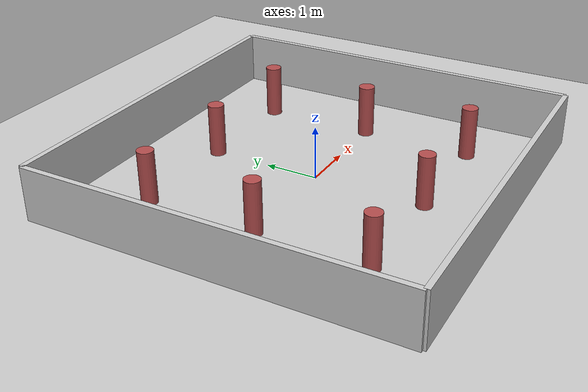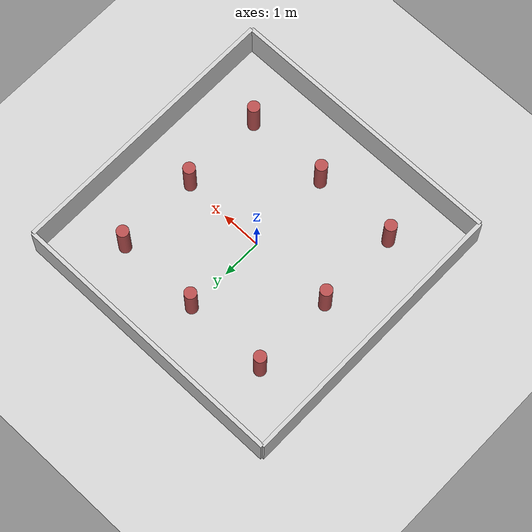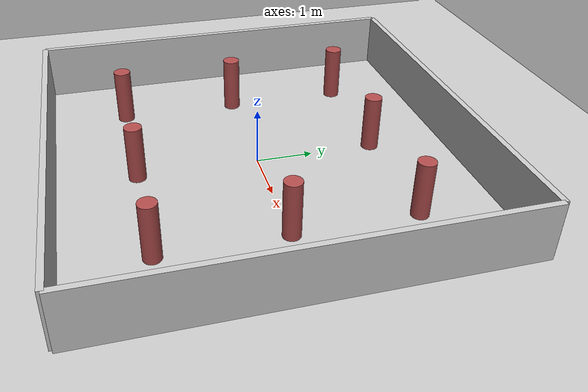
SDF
<sdf version="1.6">
  <world name="default">
    <!-- Zemin -->
    <model name="ground_plane">
      <static>true</static>
      <link name="link">
        <collision name="collision">
          <geometry>
            <plane>
              <normal>0 0 1</normal>
              <size>100 100</size>
            </plane>
          </geometry>
        </collision>
        <visual name="visual">
          <geometry>
            <plane>
              <normal>0 0 1</normal>
              <size>100 100</size>
            </plane>
          </geometry>
          <material>
            <script>
              <uri>file://media/materials/scripts/gazebo.material</uri>
              <name>Gazebo/Grey</name>
            </script>
          </material>
        </visual>
      </link>
    </model>

    <!-- Duvarlarla çevrili alan -->
    <model name="walled_area">
      <static>true</static>

      <!-- Ön duvar -->
      <link name="front_wall">
        <pose>0 3.5 0.5 0 0 0</pose>
        <collision name="collision">
          <geometry>
            <box>
              <size>7 0.1 1</size>
            </box>
          </geometry>
        </collision>
        <visual name="visual">
          <geometry>
            <box>
              <size>7 0.1 1</size>
            </box>
          </geometry>
          <material><ambient>0.8 0.8 0.8 1</ambient></material>
        </visual>
      </link>

      <!-- Arka duvar -->
      <link name="back_wall">
        <pose>0 -3.5 0.5 0 0 0</pose>
        <collision name="collision">
          <geometry>
            <box>
              <size>7 0.1 1</size>
            </box>
          </geometry>
        </collision>
        <visual name="visual">
          <geometry>
            <box>
              <size>7 0.1 1</size>
            </box>
          </geometry>
          <material><ambient>0.8 0.8 0.8 1</ambient></material>
        </visual>
      </link>

      <!-- Sol duvar -->
      <link name="left_wall">
        <pose>-3.5 0 0.5 0 0 0</pose>
        <collision name="collision">
          <geometry>
            <box>
              <size>0.1 7 1</size>
            </box>
          </geometry>
        </collision>
        <visual name="visual">
          <geometry>
            <box>
              <size>0.1 7 1</size>
            </box>
          </geometry>
          <material><ambient>0.8 0.8 0.8 1</ambient></material>
        </visual>
      </link>

      <!-- Sağ duvar -->
      <link name="right_wall">
        <pose>3.5 0 0.5 0 0 0</pose>
        <collision name="collision">
          <geometry>
            <box>
              <size>0.1 7 1</size>
            </box>
          </geometry>
        </collision>
        <visual name="visual">
          <geometry>
            <box>
              <size>0.1 7 1</size>
            </box>
          </geometry>
          <material><ambient>0.8 0.8 0.8 1</ambient></material>
        </visual>
      </link>

      <!-- Sütunlar -->
      <link name="column1">
        <pose>-2.1 -2.1 0.5 0 0 0</pose>
        <collision name="collision">
          <geometry>
            <cylinder>
              <radius>0.15</radius>
              <length>1</length>
            </cylinder>
          </geometry>
        </collision>
        <visual name="visual">
          <geometry>
            <cylinder>
              <radius>0.15</radius>
              <length>1</length>
            </cylinder>
          </geometry>
          <material><ambient>0.7 0.3 0.3 1</ambient></material>
        </visual>
      </link>

      <link name="column2">
        <pose>2.1 -2.1 0.5 0 0 0</pose>
        <collision name="collision">
          <geometry>
            <cylinder>
              <radius>0.15</radius>
              <length>1</length>
            </cylinder>
          </geometry>
        </collision>
        <visual name="visual">
          <geometry>
            <cylinder>
              <radius>0.15</radius>
              <length>1</length>
            </cylinder>
          </geometry>
          <material><ambient>0.7 0.3 0.3 1</ambient></material>
        </visual>
      </link>

      <link name="column3">
        <pose>-2.1 2.1 0.5 0 0 0</pose>
        <collision name="collision">
          <geometry>
            <cylinder>
              <radius>0.15</radius>
              <length>1</length>
            </cylinder>
          </geometry>
        </collision>
        <visual name="visual">
          <geometry>
            <cylinder>
              <radius>0.15</radius>
              <length>1</length>
            </cylinder>
          </geometry>
          <material><ambient>0.7 0.3 0.3 1</ambient></material>
        </visual>
      </link>

      <link name="column4">
        <pose>2.1 2.1 0.5 0 0 0</pose>
        <collision name="collision">
          <geometry>
            <cylinder>
              <radius>0.15</radius>
              <length>1</length>
            </cylinder>
          </geometry>
        </collision>
        <visual name="visual">
          <geometry>
            <cylinder>
              <radius>0.15</radius>
              <length>1</length>
            </cylinder>
          </geometry>
          <material><ambient>0.7 0.3 0.3 1</ambient></material>
        </visual>
      </link>

      <link name="column5">
        <pose>2.1 0 0.5 0 0 0</pose>
        <collision name="collision">
          <geometry>
            <cylinder>
              <radius>0.15</radius>
              <length>1</length>
            </cylinder>
          </geometry>
        </collision>
        <visual name="visual">
          <geometry>
            <cylinder>
              <radius>0.15</radius>
              <length>1</length>
            </cylinder>
          </geometry>
          <material><ambient>0.7 0.3 0.3 1</ambient></material>
        </visual>
      </link>

      <link name="column6">
        <pose>-2.1 0 0.5 0 0 0</pose>
        <collision name="collision">
          <geometry>
            <cylinder>
              <radius>0.15</radius>
              <length>1</length>
            </cylinder>
          </geometry>
        </collision>
        <visual name="visual">
          <geometry>
            <cylinder>
              <radius>0.15</radius>
              <length>1</length>
            </cylinder>
          </geometry>
          <material><ambient>0.7 0.3 0.3 1</ambient></material>
        </visual>
      </link>

      <link name="column7">
        <pose> 0 2.1 0.5 0 0 0</pose>
        <collision name="collision">
          <geometry>
            <cylinder>
              <radius>0.15</radius>
              <length>1</length>
            </cylinder>
          </geometry>
        </collision>
        <visual name="visual">
          <geometry>
            <cylinder>
              <radius>0.15</radius>
              <length>1</length>
            </cylinder>
          </geometry>
          <material><ambient>0.7 0.3 0.3 1</ambient></material>
        </visual>
      </link>

      <link name="column8">
        <pose>0 -2.1 0.5 0 0 0</pose>
        <collision name="collision">
          <geometry>
            <cylinder>
              <radius>0.15</radius>
              <length>1</length>
            </cylinder>
          </geometry>
        </collision>
        <visual name="visual">
          <geometry>
            <cylinder>
              <radius>0.15</radius>
              <length>1</length>
            </cylinder>
          </geometry>
          <material><ambient>0.7 0.3 0.3 1</ambient></material>
        </visual>
      </link>

    </model>

    <physics type="ode"/>
  </world>
</sdf>
